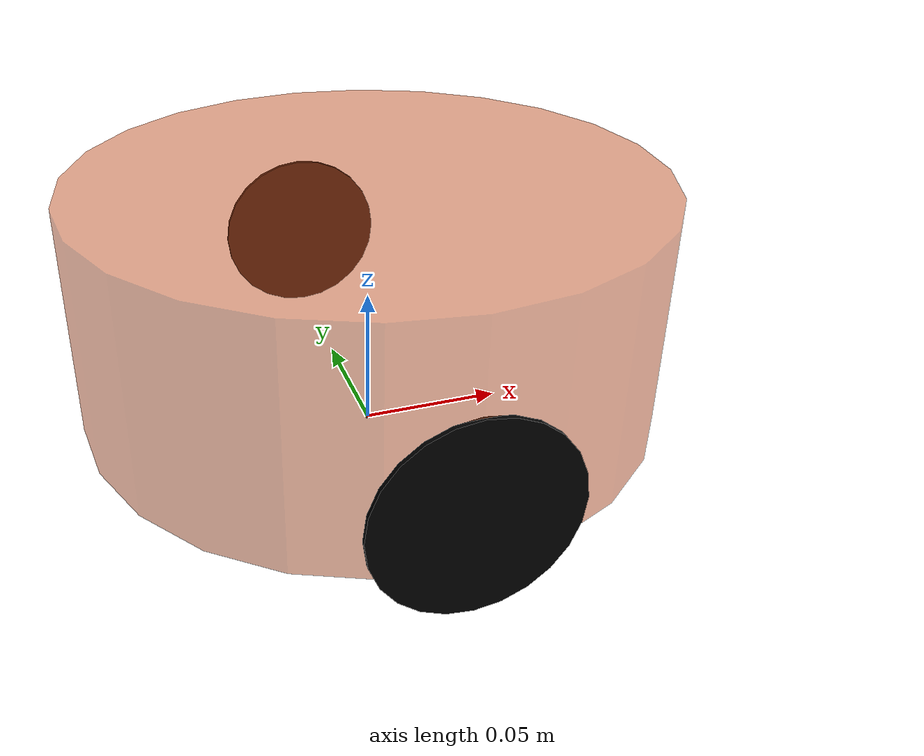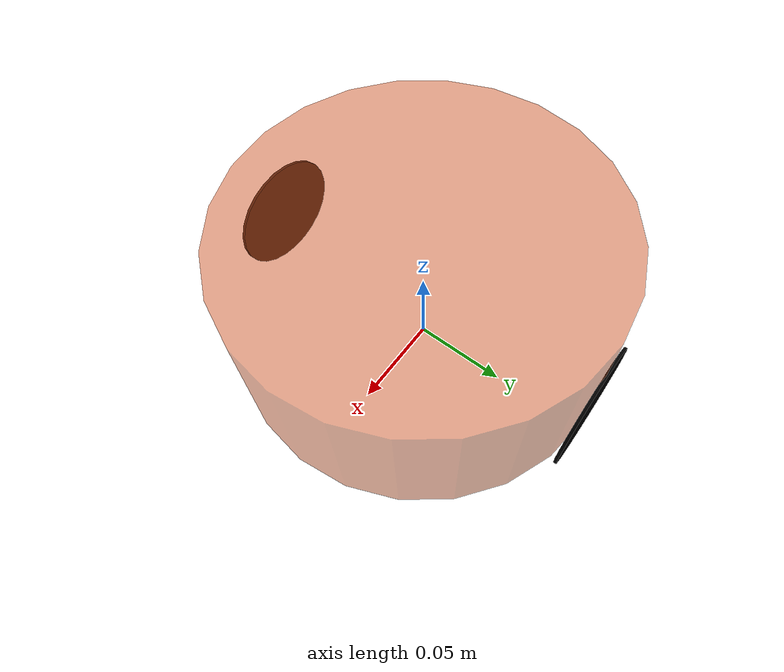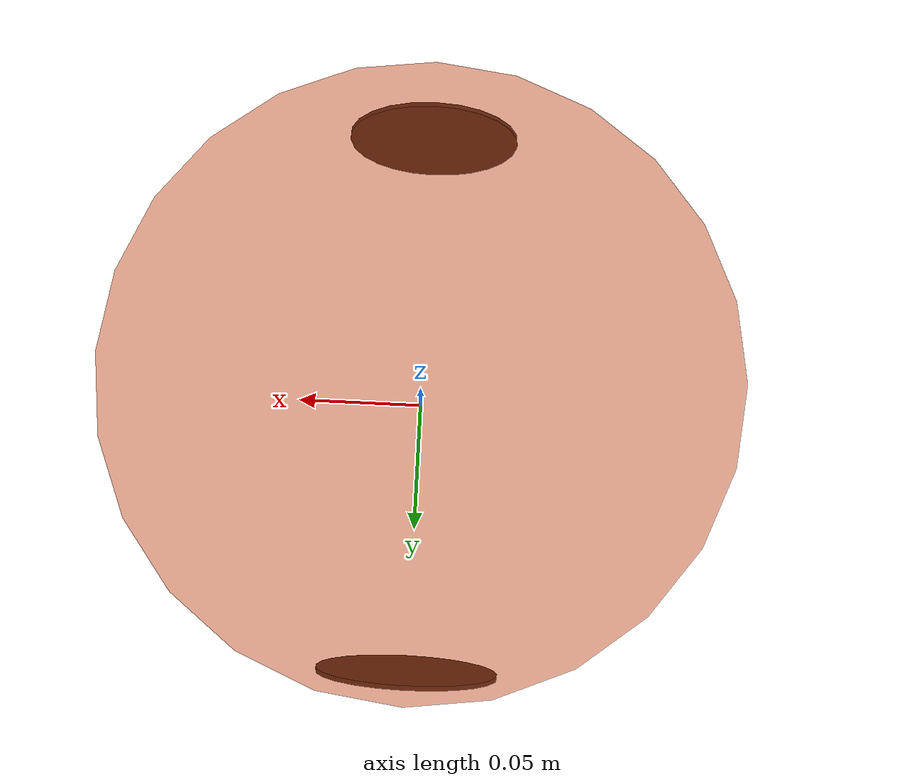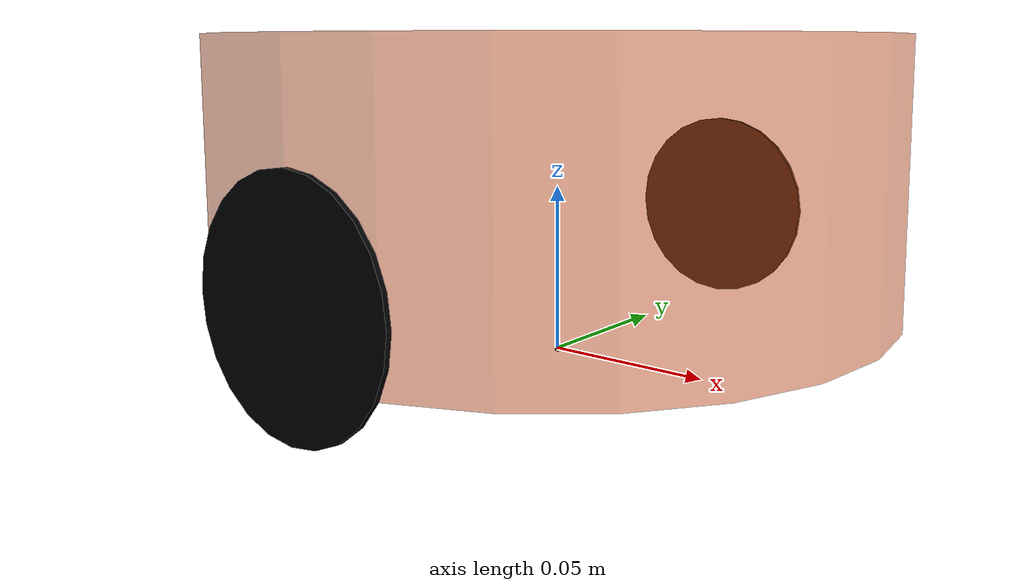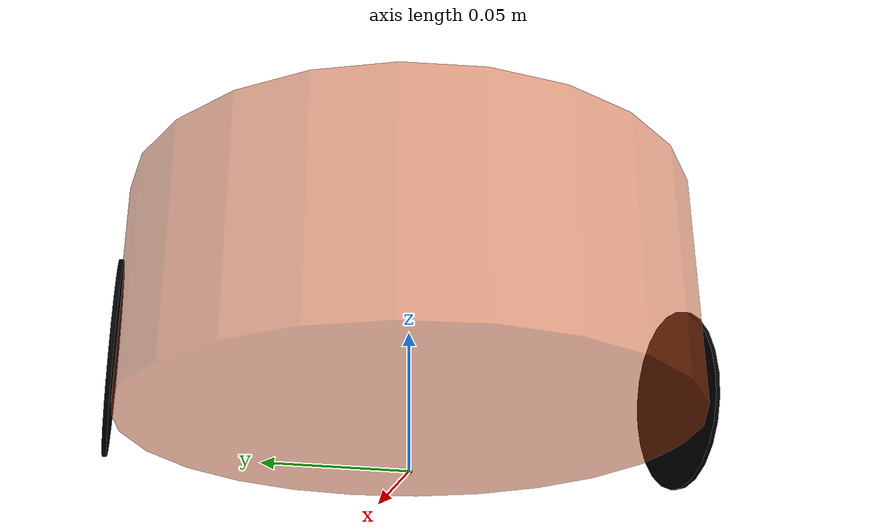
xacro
<robot name="moving_car" xmlns:xacro="http://wiki.ros.org/xacro" >

    <material name="black">
        <color rgba="0.0 0.0 0.0 1.0" />
    </material>

    <xacro:property name="base_link_radius" value="0.1" />
    <xacro:property name="base_link_length" value="0.08" />
    <xacro:property name="wheel_radius" value="0.0325" />
    <xacro:property name="wheel_length" value="0.0015" />
    <xacro:property name="PI" value="3.1415927" />
    <xacro:property name="lidi_space" value="0.015" />

    <link name="base_footprint">
        <visual>
            <geometry>
                <sphere radius="0.001" />
            </geometry>
        </visual>

        <gazebo reference="base_footprint">
            <material>Gazebo/Black</material>
        </gazebo>
    </link>

    <xacro:macro name="default_inertial" params="mass">
               <inertial>
                       <mass value="${mass}" />
                       <inertia ixx="1.0" ixy="0.0" ixz="0.0"
                                iyy="1.0" iyz="0.0"
                                izz="1.0" />
               </inertial>
    </xacro:macro>

    <link name="base_link">
        <visual>
            <geometry>
                <cylinder radius="0.1" length="0.08" />
            </geometry>
            <origin xyz="0 0 0" rpy="0 0 0" />
            <material name="yellow">
                <color rgba="0.8 0.3 0.1 0.5" />
            </material>
        </visual>
        <collision>
            <geometry>
                <cylinder radius="0.1" length="0.08" />
            </geometry>
        </collision>
        <xacro:default_inertial mass="10"/>
        <gazebo reference="base_footprint">
          <material>Gazebo/Black</material>
      </gazebo>
    </link>

    <joint name="base_link2base_footprint" type="fixed">
        <parent link="base_footprint" />
        <child link="base_link" />
        <origin xyz="0 0 ${lidi_space + base_link_length / 2 }" />
      </joint>

      <xacro:macro name="add_wheels" params="name flag">
        <link name="${name}_wheel">
          <visual>
            <geometry>
              <cylinder radius="${wheel_radius}" length="${wheel_length}" />
            </geometry>
            <origin xyz="0.0 0.0 0.0" rpy="${PI / 2} 0.0 0.0" />
            <material name="black" />
          </visual>
          <gazebo reference="base_footprint">
            <material>Gazebo/Black</material>
        </gazebo>
        </link>

        <joint name="${name}_wheel2base_link" type="continuous">
          <parent link="base_link" />
          <child link="${name}_wheel" />
          <origin xyz="0 ${flag * base_link_radius} ${-(lidi_space + base_link_length / 2 - wheel_radius) }" />
          <axis xyz="0 1 0" />
        </joint>
      </xacro:macro>

      <xacro:add_wheels name="left" flag="1" />
      <xacro:add_wheels name="right" flag="-1" />

</robot>
